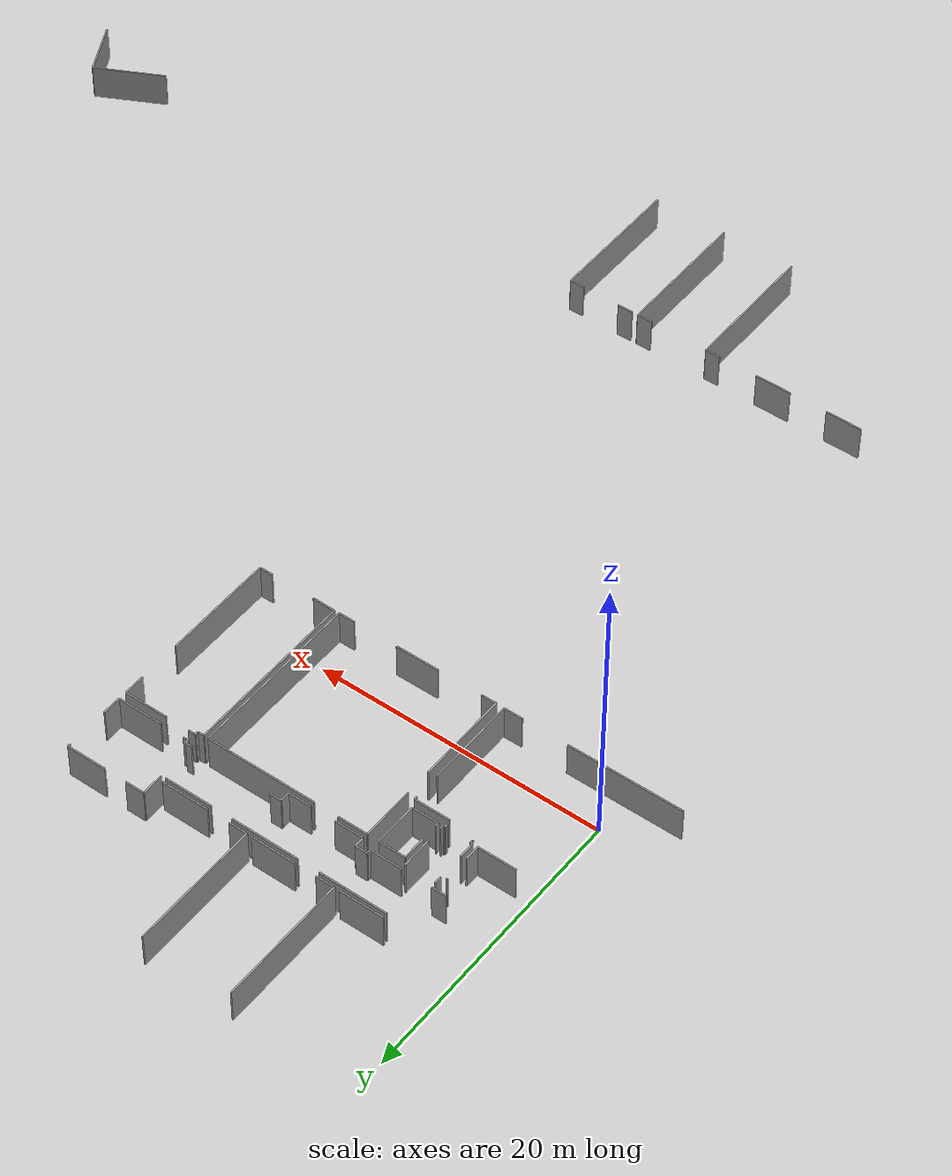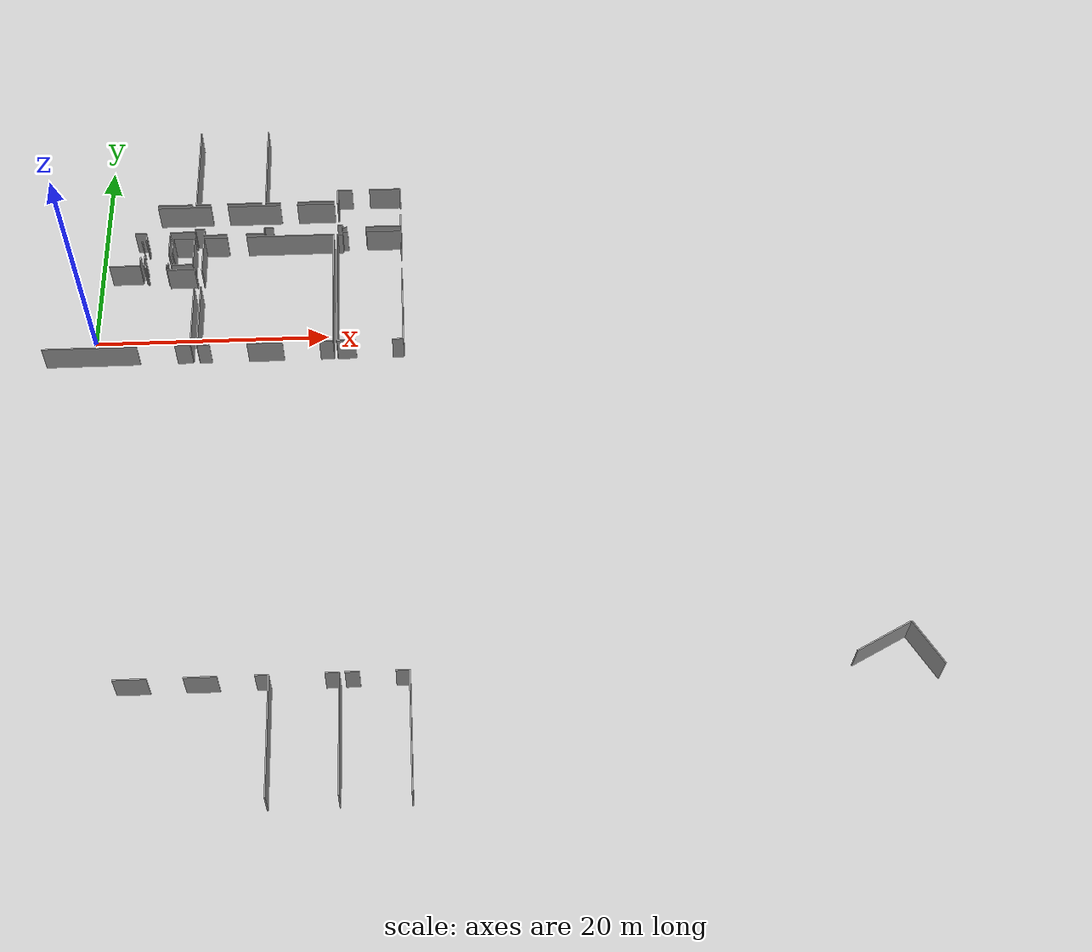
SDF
<sdf version="1.6">
 <world name="default">
  <model name="ground_plane">
   <static>1</static>
   <link name="link">
    <collision name="collision">
     <geometry><plane><normal>0 0 1</normal><size>100 100</size></plane></geometry>
     <surface><friction><ode><mu>100</mu><mu2>50</mu2></ode></friction></surface>
    </collision>
    <visual name="visual">
     <cast_shadows>0</cast_shadows>
     <geometry><plane><normal>0 0 1</normal><size>100 100</size></plane></geometry>
     <material>
      <script><uri>file://media/materials/scripts/gazebo.material</uri><name>Gazebo/Grey</name></script>
     </material>
    </visual>
   </link>
  </model>
  <model name="0510045925_40">
   <static>1</static>
   <link name="Wall_900">
    <collision name="Wall_900_Collision">
     <geometry><box><size>0.0784244054719 0.1 2.5</size></box></geometry>
     <pose>0.039212202736 0 1.25 0 0 0</pose>
    </collision>
    <visual name="Wall_900_Visual">
     <pose>0.039212202736 0 1.25 0 0 0</pose>
     <geometry><box><size>0.0784244054719 0.1 2.5</size></box></geometry>
     <material>
      <script><uri>file://media/materials/scripts/gazebo.material</uri><name>Gazebo/Grey</name></script>
      <ambient>1 1 1 1</ambient>
     </material>
    </visual>
    <pose>137.552397147 -91.5793253978 0 0 0 -1.57079632679</pose>
   </link>
   <link name="Wall_901">
    <collision name="Wall_901_Collision">
     <geometry><box><size>1.0342377097 0.1 2.5</size></box></geometry>
     <pose>0.517118854851 0 1.25 0 0 0</pose>
    </collision>
    <visual name="Wall_901_Visual">
     <pose>0.517118854851 0 1.25 0 0 0</pose>
     <geometry><box><size>1.0342377097 0.1 2.5</size></box></geometry>
     <material>
      <script><uri>file://media/materials/scripts/gazebo.material</uri><name>Gazebo/Grey</name></script>
      <ambient>1 1 1 1</ambient>
     </material>
    </visual>
    <pose>137.552397147 -93.388924139 0 0 0 -1.57079632679</pose>
   </link>
   <link name="Wall_902">
    <collision name="Wall_902_Collision">
     <geometry><box><size>2.66237101984 0.1 2.5</size></box></geometry>
     <pose>1.33118550992 0 1.25 0 0 0</pose>
    </collision>
    <visual name="Wall_902_Visual">
     <pose>1.33118550992 0 1.25 0 0 0</pose>
     <geometry><box><size>2.66237101984 0.1 2.5</size></box></geometry>
     <material>
      <script><uri>file://media/materials/scripts/gazebo.material</uri><name>Gazebo/Grey</name></script>
      <ambient>1 1 1 1</ambient>
     </material>
    </visual>
    <pose>137.552397147 -94.4231618487 0 0 0 -3.14035337872</pose>
   </link>
   <link name="Wall_903">
    <collision name="Wall_903_Collision">
     <geometry><box><size>1.089312454 0.1 2.5</size></box></geometry>
     <pose>0.544656226999 0 1.25 0 0 0</pose>
    </collision>
    <visual name="Wall_903_Visual">
     <pose>0.544656226999 0 1.25 0 0 0</pose>
     <geometry><box><size>1.089312454 0.1 2.5</size></box></geometry>
     <material>
      <script><uri>file://media/materials/scripts/gazebo.material</uri><name>Gazebo/Grey</name></script>
      <ambient>1 1 1 1</ambient>
     </material>
    </visual>
    <pose>137.906449075 -94.4361056826 0 0 0 1.57079632679</pose>
   </link>
   <link name="Wall_904">
    <collision name="Wall_904_Collision">
     <geometry><box><size>0.526382579122 0.1 2.5</size></box></geometry>
     <pose>0.263191289561 0 1.25 0 0 0</pose>
    </collision>
    <visual name="Wall_904_Visual">
     <pose>0.263191289561 0 1.25 0 0 0</pose>
     <geometry><box><size>0.526382579122 0.1 2.5</size></box></geometry>
     <material>
      <script><uri>file://media/materials/scripts/gazebo.material</uri><name>Gazebo/Grey</name></script>
      <ambient>1 1 1 1</ambient>
     </material>
    </visual>
    <pose>137.906449075 -91.5067384077 0 0 0 1.57079632679</pose>
   </link>
   <link name="Wall_905">
    <collision name="Wall_905_Collision">
     <geometry><box><size>2.09487068856 0.1 2.5</size></box></geometry>
     <pose>1.04743534428 0 1.25 0 0 0</pose>
    </collision>
    <visual name="Wall_905_Visual">
     <pose>1.04743534428 0 1.25 0 0 0</pose>
     <geometry><box><size>2.09487068856 0.1 2.5</size></box></geometry>
     <material>
      <script><uri>file://media/materials/scripts/gazebo.material</uri><name>Gazebo/Grey</name></script>
      <ambient>1 1 1 1</ambient>
     </material>
    </visual>
    <pose>139.988883531 -90.9803558285 0 0 0 -1.57079632679</pose>
   </link>
   <link name="Wall_906">
    <collision name="Wall_906_Collision">
     <geometry><box><size>0.260907083577 0.1 2.5</size></box></geometry>
     <pose>0.130453541788 0 1.25 0 0 0</pose>
    </collision>
    <visual name="Wall_906_Visual">
     <pose>0.130453541788 0 1.25 0 0 0</pose>
     <geometry><box><size>0.260907083577 0.1 2.5</size></box></geometry>
     <material>
      <script><uri>file://media/materials/scripts/gazebo.material</uri><name>Gazebo/Grey</name></script>
      <ambient>1 1 1 1</ambient>
     </material>
    </visual>
    <pose>139.988883531 -94.184335423 0 0 0 -1.57079632679</pose>
   </link>
   <link name="Wall_907">
    <collision name="Wall_907_Collision">
     <geometry><box><size>0.126646531814 0.1 2.5</size></box></geometry>
     <pose>0.063323265907 0 1.25 0 0 0</pose>
    </collision>
    <visual name="Wall_907_Visual">
     <pose>0.063323265907 0 1.25 0 0 0</pose>
     <geometry><box><size>0.126646531814 0.1 2.5</size></box></geometry>
     <material>
      <script><uri>file://media/materials/scripts/gazebo.material</uri><name>Gazebo/Grey</name></script>
      <ambient>1 1 1 1</ambient>
     </material>
    </visual>
    <pose>139.988883531 -94.4452425065 0 0 0 3.14159265359</pose>
   </link>
   <link name="Wall_908">
    <collision name="Wall_908_Collision">
     <geometry><box><size>0.206086139946 0.1 2.5</size></box></geometry>
     <pose>0.103043069973 0 1.25 0 0 0</pose>
    </collision>
    <visual name="Wall_908_Visual">
     <pose>0.103043069973 0 1.25 0 0 0</pose>
     <geometry><box><size>0.206086139946 0.1 2.5</size></box></geometry>
     <material>
      <script><uri>file://media/materials/scripts/gazebo.material</uri><name>Gazebo/Grey</name></script>
      <ambient>1 1 1 1</ambient>
     </material>
    </visual>
    <pose>139.862236999 -94.4452425065 0 0 0 -1.57079632679</pose>
   </link>
   <link name="Wall_909">
    <collision name="Wall_909_Collision">
     <geometry><box><size>0.206086139946 0.1 2.5</size></box></geometry>
     <pose>0.103043069973 0 1.25 0 0 0</pose>
    </collision>
    <visual name="Wall_909_Visual">
     <pose>0.103043069973 0 1.25 0 0 0</pose>
     <geometry><box><size>0.206086139946 0.1 2.5</size></box></geometry>
     <material>
      <script><uri>file://media/materials/scripts/gazebo.material</uri><name>Gazebo/Grey</name></script>
      <ambient>1 1 1 1</ambient>
     </material>
    </visual>
    <pose>138.059744677 -94.6513286465 0 0 0 1.57079632679</pose>
   </link>
   <link name="Wall_910">
    <collision name="Wall_910_Collision">
     <geometry><box><size>0.153567649693 0.1 2.5</size></box></geometry>
     <pose>0.0767838248464 0 1.25 0 0 0</pose>
    </collision>
    <visual name="Wall_910_Visual">
     <pose>0.0767838248464 0 1.25 0 0 0</pose>
     <geometry><box><size>0.153567649693 0.1 2.5</size></box></geometry>
     <material>
      <script><uri>file://media/materials/scripts/gazebo.material</uri><name>Gazebo/Grey</name></script>
      <ambient>1 1 1 1</ambient>
     </material>
    </visual>
    <pose>138.059744677 -94.4452425065 0 0 0 3.08206043351</pose>
   </link>
   <link name="Wall_911">
    <collision name="Wall_911_Collision">
     <geometry><box><size>1.84360803025 0.1 2.5</size></box></geometry>
     <pose>0.921804015127 0 1.25 0 0 0</pose>
    </collision>
    <visual name="Wall_911_Visual">
     <pose>0.921804015127 0 1.25 0 0 0</pose>
     <geometry><box><size>1.84360803025 0.1 2.5</size></box></geometry>
     <material>
      <script><uri>file://media/materials/scripts/gazebo.material</uri><name>Gazebo/Grey</name></script>
      <ambient>1 1 1 1</ambient>
     </material>
    </visual>
    <pose>140.307403365 -91.4092789523 0 0 0 0.0</pose>
   </link>
   <link name="Wall_912">
    <collision name="Wall_912_Collision">
     <geometry><box><size>3.03088754093 0.1 2.5</size></box></geometry>
     <pose>1.51544377046 0 1.25 0 0 0</pose>
    </collision>
    <visual name="Wall_912_Visual">
     <pose>1.51544377046 0 1.25 0 0 0</pose>
     <geometry><box><size>3.03088754093 0.1 2.5</size></box></geometry>
     <material>
      <script><uri>file://media/materials/scripts/gazebo.material</uri><name>Gazebo/Grey</name></script>
      <ambient>1 1 1 1</ambient>
     </material>
    </visual>
    <pose>142.151011396 -91.4092789523 0 0 0 -1.57079632679</pose>
   </link>
   <link name="Wall_913">
    <collision name="Wall_913_Collision">
     <geometry><box><size>1.8512220502 0.1 2.5</size></box></geometry>
     <pose>0.925611025101 0 1.25 0 0 0</pose>
    </collision>
    <visual name="Wall_913_Visual">
     <pose>0.925611025101 0 1.25 0 0 0</pose>
     <geometry><box><size>1.8512220502 0.1 2.5</size></box></geometry>
     <material>
      <script><uri>file://media/materials/scripts/gazebo.material</uri><name>Gazebo/Grey</name></script>
      <ambient>1 1 1 1</ambient>
     </material>
    </visual>
    <pose>142.151011396 -94.4401664932 0 0 0 3.14159265359</pose>
   </link>
   <link name="Wall_914">
    <collision name="Wall_914_Collision">
     <geometry><box><size>0.273089515495 0.1 2.5</size></box></geometry>
     <pose>0.136544757747 0 1.25 0 0 0</pose>
    </collision>
    <visual name="Wall_914_Visual">
     <pose>0.136544757747 0 1.25 0 0 0</pose>
     <geometry><box><size>0.273089515495 0.1 2.5</size></box></geometry>
     <material>
      <script><uri>file://media/materials/scripts/gazebo.material</uri><name>Gazebo/Grey</name></script>
      <ambient>1 1 1 1</ambient>
     </material>
    </visual>
    <pose>140.299789345 -94.4401664932 0 0 0 1.57079632679</pose>
   </link>
   <link name="Wall_915">
    <collision name="Wall_915_Collision">
     <geometry><box><size>1.63271743139 0.1 2.5</size></box></geometry>
     <pose>0.816358715696 0 1.25 0 0 0</pose>
    </collision>
    <visual name="Wall_915_Visual">
     <pose>0.816358715696 0 1.25 0 0 0</pose>
     <geometry><box><size>1.63271743139 0.1 2.5</size></box></geometry>
     <material>
      <script><uri>file://media/materials/scripts/gazebo.material</uri><name>Gazebo/Grey</name></script>
      <ambient>1 1 1 1</ambient>
     </material>
    </visual>
    <pose>140.299789345 -93.04197863 0 0 0 1.56613290654</pose>
   </link>
   <link name="Wall_919">
    <collision name="Wall_919_Collision">
     <geometry><box><size>2.4552676328 0.1 2.5</size></box></geometry>
     <pose>1.2276338164 0 1.25 0 0 0</pose>
    </collision>
    <visual name="Wall_919_Visual">
     <pose>1.2276338164 0 1.25 0 0 0</pose>
     <geometry><box><size>2.4552676328 0.1 2.5</size></box></geometry>
     <material>
      <script><uri>file://media/materials/scripts/gazebo.material</uri><name>Gazebo/Grey</name></script>
      <ambient>1 1 1 1</ambient>
     </material>
    </visual>
    <pose>139.961219258 -94.9980203548 0 0 0 0.0</pose>
   </link>
   <link name="Wall_920">
    <collision name="Wall_920_Collision">
     <geometry><box><size>0.222583183168 0.1 2.5</size></box></geometry>
     <pose>0.111291591584 0 1.25 0 0 0</pose>
    </collision>
    <visual name="Wall_920_Visual">
     <pose>0.111291591584 0 1.25 0 0 0</pose>
     <geometry><box><size>0.222583183168 0.1 2.5</size></box></geometry>
     <material>
      <script><uri>file://media/materials/scripts/gazebo.material</uri><name>Gazebo/Grey</name></script>
      <ambient>1 1 1 1</ambient>
     </material>
    </visual>
    <pose>142.416486891 -94.9980203548 0 0 0 -1.57079632679</pose>
   </link>
   <link name="Wall_921">
    <collision name="Wall_921_Collision">
     <geometry><box><size>6.31836755412 0.1 2.5</size></box></geometry>
     <pose>3.15918377706 0 1.25 0 0 0</pose>
    </collision>
    <visual name="Wall_921_Visual">
     <pose>3.15918377706 0 1.25 0 0 0</pose>
     <geometry><box><size>6.31836755412 0.1 2.5</size></box></geometry>
     <material>
      <script><uri>file://media/materials/scripts/gazebo.material</uri><name>Gazebo/Grey</name></script>
      <ambient>1 1 1 1</ambient>
     </material>
    </visual>
    <pose>142.416486891 -97.0903530367 0 0 0 -1.57079632679</pose>
   </link>
   <link name="Wall_922">
    <collision name="Wall_922_Collision">
     <geometry><box><size>1.32077866044 0.1 2.5</size></box></geometry>
     <pose>0.66038933022 0 1.25 0 0 0</pose>
    </collision>
    <visual name="Wall_922_Visual">
     <pose>0.66038933022 0 1.25 0 0 0</pose>
     <geometry><box><size>1.32077866044 0.1 2.5</size></box></geometry>
     <material>
      <script><uri>file://media/materials/scripts/gazebo.material</uri><name>Gazebo/Grey</name></script>
      <ambient>1 1 1 1</ambient>
     </material>
    </visual>
    <pose>142.416486891 -103.408720591 0 0 0 3.14159265359</pose>
   </link>
   <link name="Wall_923">
    <collision name="Wall_923_Collision">
     <geometry><box><size>8.01377350284 0.1 2.5</size></box></geometry>
     <pose>4.00688675142 0 1.25 0 0 0</pose>
    </collision>
    <visual name="Wall_923_Visual">
     <pose>4.00688675142 0 1.25 0 0 0</pose>
     <geometry><box><size>8.01377350284 0.1 2.5</size></box></geometry>
     <material>
      <script><uri>file://media/materials/scripts/gazebo.material</uri><name>Gazebo/Grey</name></script>
      <ambient>1 1 1 1</ambient>
     </material>
    </visual>
    <pose>137.910509886 -103.408720591 0 0 0 -3.13950239535</pose>
   </link>
   <link name="Wall_924">
    <collision name="Wall_924_Collision">
     <geometry><box><size>6.42496383341 0.1 2.5</size></box></geometry>
     <pose>3.2124819167 0 1.25 0 0 0</pose>
    </collision>
    <visual name="Wall_924_Visual">
     <pose>3.2124819167 0 1.25 0 0 0</pose>
     <geometry><box><size>6.42496383341 0.1 2.5</size></box></geometry>
     <material>
      <script><uri>file://media/materials/scripts/gazebo.material</uri><name>Gazebo/Grey</name></script>
      <ambient>1 1 1 1</ambient>
     </material>
    </visual>
    <pose>142.994644806 -103.430801249 0 0 0 1.57079632679</pose>
   </link>
   <link name="Wall_925">
    <collision name="Wall_925_Collision">
     <geometry><box><size>3.72604756224 0.1 2.5</size></box></geometry>
     <pose>1.86302378112 0 1.25 0 0 0</pose>
    </collision>
    <visual name="Wall_925_Visual">
     <pose>1.86302378112 0 1.25 0 0 0</pose>
     <geometry><box><size>3.72604756224 0.1 2.5</size></box></geometry>
     <material>
      <script><uri>file://media/materials/scripts/gazebo.material</uri><name>Gazebo/Grey</name></script>
      <ambient>1 1 1 1</ambient>
     </material>
    </visual>
    <pose>142.994644806 -95.1388797239 0 0 0 1.57079632679</pose>
   </link>
   <link name="Wall_926">
    <collision name="Wall_926_Collision">
     <geometry><box><size>2.06771401741 0.1 2.5</size></box></geometry>
     <pose>1.03385700871 0 1.25 0 0 0</pose>
    </collision>
    <visual name="Wall_926_Visual">
     <pose>1.03385700871 0 1.25 0 0 0</pose>
     <geometry><box><size>2.06771401741 0.1 2.5</size></box></geometry>
     <material>
      <script><uri>file://media/materials/scripts/gazebo.material</uri><name>Gazebo/Grey</name></script>
      <ambient>1 1 1 1</ambient>
     </material>
    </visual>
    <pose>142.994644806 -91.4128321616 0 0 0 0.0</pose>
   </link>
   <link name="Wall_927">
    <collision name="Wall_927_Collision">
     <geometry><box><size>7.71579401538 0.1 2.5</size></box></geometry>
     <pose>3.85789700769 0 1.25 0 0 0</pose>
    </collision>
    <visual name="Wall_927_Visual">
     <pose>3.85789700769 0 1.25 0 0 0</pose>
     <geometry><box><size>7.71579401538 0.1 2.5</size></box></geometry>
     <material>
      <script><uri>file://media/materials/scripts/gazebo.material</uri><name>Gazebo/Grey</name></script>
      <ambient>1 1 1 1</ambient>
     </material>
    </visual>
    <pose>146.764346083 -91.4128321616 0 0 0 0.0</pose>
   </link>
   <link name="Wall_928">
    <collision name="Wall_928_Collision">
     <geometry><box><size>12.0055328545 0.1 2.5</size></box></geometry>
     <pose>6.00276642725 0 1.25 0 0 0</pose>
    </collision>
    <visual name="Wall_928_Visual">
     <pose>6.00276642725 0 1.25 0 0 0</pose>
     <geometry><box><size>12.0055328545 0.1 2.5</size></box></geometry>
     <material>
      <script><uri>file://media/materials/scripts/gazebo.material</uri><name>Gazebo/Grey</name></script>
      <ambient>1 1 1 1</ambient>
     </material>
    </visual>
    <pose>154.480140098 -91.4128321616 0 0 0 -1.57079632679</pose>
   </link>
   <link name="Wall_929">
    <collision name="Wall_929_Collision">
     <geometry><box><size>1.1487018096 0.1 2.5</size></box></geometry>
     <pose>0.574350904799 0 1.25 0 0 0</pose>
    </collision>
    <visual name="Wall_929_Visual">
     <pose>0.574350904799 0 1.25 0 0 0</pose>
     <geometry><box><size>1.1487018096 0.1 2.5</size></box></geometry>
     <material>
      <script><uri>file://media/materials/scripts/gazebo.material</uri><name>Gazebo/Grey</name></script>
      <ambient>1 1 1 1</ambient>
     </material>
    </visual>
    <pose>154.480140098 -103.418365016 0 0 0 3.14159265359</pose>
   </link>
   <link name="Wall_930">
    <collision name="Wall_930_Collision">
     <geometry><box><size>3.03545595289 0.1 2.5</size></box></geometry>
     <pose>1.51772797645 0 1.25 0 0 0</pose>
    </collision>
    <visual name="Wall_930_Visual">
     <pose>1.51772797645 0 1.25 0 0 0</pose>
     <geometry><box><size>3.03545595289 0.1 2.5</size></box></geometry>
     <material>
      <script><uri>file://media/materials/scripts/gazebo.material</uri><name>Gazebo/Grey</name></script>
      <ambient>1 1 1 1</ambient>
     </material>
    </visual>
    <pose>150.224410548 -103.418365016 0 0 0 3.14159265359</pose>
   </link>
   <link name="Wall_931">
    <collision name="Wall_931_Collision">
     <geometry><box><size>1.05309239277 0.1 2.5</size></box></geometry>
     <pose>0.526546196384 0 1.25 0 0 0</pose>
    </collision>
    <visual name="Wall_931_Visual">
     <pose>0.526546196384 0 1.25 0 0 0</pose>
     <geometry><box><size>1.05309239277 0.1 2.5</size></box></geometry>
     <material>
      <script><uri>file://media/materials/scripts/gazebo.material</uri><name>Gazebo/Grey</name></script>
      <ambient>1 1 1 1</ambient>
     </material>
    </visual>
    <pose>144.047663765 -103.418365016 0 0 0 -3.12978312791</pose>
   </link>
   <link name="Wall_932">
    <collision name="Wall_932_Collision">
     <geometry><box><size>11.9702545621 0.1 2.5</size></box></geometry>
     <pose>5.98512728103 0 1.25 0 0 0</pose>
    </collision>
    <visual name="Wall_932_Visual">
     <pose>5.98512728103 0 1.25 0 0 0</pose>
     <geometry><box><size>11.9702545621 0.1 2.5</size></box></geometry>
     <material>
      <script><uri>file://media/materials/scripts/gazebo.material</uri><name>Gazebo/Grey</name></script>
      <ambient>1 1 1 1</ambient>
     </material>
    </visual>
    <pose>154.815410776 -103.40465978 0 0 0 1.57079632679</pose>
   </link>
   <link name="Wall_933">
    <collision name="Wall_933_Collision">
     <geometry><box><size>0.445927768331 0.1 2.5</size></box></geometry>
     <pose>0.222963884165 0 1.25 0 0 0</pose>
    </collision>
    <visual name="Wall_933_Visual">
     <pose>0.222963884165 0 1.25 0 0 0</pose>
     <geometry><box><size>0.445927768331 0.1 2.5</size></box></geometry>
     <material>
      <script><uri>file://media/materials/scripts/gazebo.material</uri><name>Gazebo/Grey</name></script>
      <ambient>1 1 1 1</ambient>
     </material>
    </visual>
    <pose>154.815410776 -91.4344052181 0 0 0 0.0</pose>
   </link>
   <link name="Wall_934">
    <collision name="Wall_934_Collision">
     <geometry><box><size>0.240349229715 0.1 2.5</size></box></geometry>
     <pose>0.120174614857 0 1.25 0 0 0</pose>
    </collision>
    <visual name="Wall_934_Visual">
     <pose>0.120174614857 0 1.25 0 0 0</pose>
     <geometry><box><size>0.240349229715 0.1 2.5</size></box></geometry>
     <material>
      <script><uri>file://media/materials/scripts/gazebo.material</uri><name>Gazebo/Grey</name></script>
      <ambient>1 1 1 1</ambient>
     </material>
    </visual>
    <pose>155.261338545 -91.4344052181 0 0 0 1.57079632679</pose>
   </link>
   <link name="Wall_935">
    <collision name="Wall_935_Collision">
     <geometry><box><size>0.487804878049 0.1 2.5</size></box></geometry>
     <pose>0.243902439024 0 1.25 0 0 0</pose>
    </collision>
    <visual name="Wall_935_Visual">
     <pose>0.243902439024 0 1.25 0 0 0</pose>
     <geometry><box><size>0.487804878049 0.1 2.5</size></box></geometry>
     <material>
      <script><uri>file://media/materials/scripts/gazebo.material</uri><name>Gazebo/Grey</name></script>
      <ambient>1 1 1 1</ambient>
     </material>
    </visual>
    <pose>155.261338545 -91.1940559884 0 0 0 0.0</pose>
   </link>
   <link name="Wall_936">
    <collision name="Wall_936_Collision">
     <geometry><box><size>3.03317174691 0.1 2.5</size></box></geometry>
     <pose>1.51658587345 0 1.25 0 0 0</pose>
    </collision>
    <visual name="Wall_936_Visual">
     <pose>1.51658587345 0 1.25 0 0 0</pose>
     <geometry><box><size>3.03317174691 0.1 2.5</size></box></geometry>
     <material>
      <script><uri>file://media/materials/scripts/gazebo.material</uri><name>Gazebo/Grey</name></script>
      <ambient>1 1 1 1</ambient>
     </material>
    </visual>
    <pose>157.413060582 -91.1940559884 0 0 0 0.0</pose>
   </link>
   <link name="Wall_937">
    <collision name="Wall_937_Collision">
     <geometry><box><size>1.46366843481 0.1 2.5</size></box></geometry>
     <pose>0.731834217406 0 1.25 0 0 0</pose>
    </collision>
    <visual name="Wall_937_Visual">
     <pose>0.731834217406 0 1.25 0 0 0</pose>
     <geometry><box><size>1.46366843481 0.1 2.5</size></box></geometry>
     <material>
      <script><uri>file://media/materials/scripts/gazebo.material</uri><name>Gazebo/Grey</name></script>
      <ambient>1 1 1 1</ambient>
     </material>
    </visual>
    <pose>160.446232329 -91.1940559884 0 0 0 -1.57079632679</pose>
   </link>
   <link name="Wall_938">
    <collision name="Wall_938_Collision">
     <geometry><box><size>7.80310144413 0.1 2.5</size></box></geometry>
     <pose>3.90155072206 0 1.25 0 0 0</pose>
    </collision>
    <visual name="Wall_938_Visual">
     <pose>3.90155072206 0 1.25 0 0 0</pose>
     <geometry><box><size>7.80310144413 0.1 2.5</size></box></geometry>
     <material>
      <script><uri>file://media/materials/scripts/gazebo.material</uri><name>Gazebo/Grey</name></script>
      <ambient>1 1 1 1</ambient>
     </material>
    </visual>
    <pose>160.446232329 -95.6233851933 0 0 0 -1.57079632679</pose>
   </link>
   <link name="Wall_939">
    <collision name="Wall_939_Collision">
     <geometry><box><size>0.936016852364 0.1 2.5</size></box></geometry>
     <pose>0.468008426182 0 1.25 0 0 0</pose>
    </collision>
    <visual name="Wall_939_Visual">
     <pose>0.468008426182 0 1.25 0 0 0</pose>
     <geometry><box><size>0.936016852364 0.1 2.5</size></box></geometry>
     <material>
      <script><uri>file://media/materials/scripts/gazebo.material</uri><name>Gazebo/Grey</name></script>
      <ambient>1 1 1 1</ambient>
     </material>
    </visual>
    <pose>160.446232329 -103.426486637 0 0 0 3.14159265359</pose>
   </link>
   <link name="Wall_940">
    <collision name="Wall_940_Collision">
     <geometry><box><size>1.58868830774 0.1 2.5</size></box></geometry>
     <pose>0.794344153869 0 1.25 0 0 0</pose>
    </collision>
    <visual name="Wall_940_Visual">
     <pose>0.794344153869 0 1.25 0 0 0</pose>
     <geometry><box><size>1.58868830774 0.1 2.5</size></box></geometry>
     <material>
      <script><uri>file://media/materials/scripts/gazebo.material</uri><name>Gazebo/Grey</name></script>
      <ambient>1 1 1 1</ambient>
     </material>
    </visual>
    <pose>156.403949138 -103.426486637 0 0 0 3.12785330409</pose>
   </link>
   <link name="Wall_941">
    <collision name="Wall_941_Collision">
     <geometry><box><size>1.33067688637 0.1 2.5</size></box></geometry>
     <pose>0.665338443187 0 1.25 0 0 0</pose>
    </collision>
    <visual name="Wall_941_Visual">
     <pose>0.665338443187 0 1.25 0 0 0</pose>
     <geometry><box><size>1.33067688637 0.1 2.5</size></box></geometry>
     <material>
      <script><uri>file://media/materials/scripts/gazebo.material</uri><name>Gazebo/Grey</name></script>
      <ambient>1 1 1 1</ambient>
     </material>
    </visual>
    <pose>154.816425979 -86.1472297657 0 0 0 0.0</pose>
   </link>
   <link name="Wall_942">
    <collision name="Wall_942_Collision">
     <geometry><box><size>2.77048805868 0.1 2.5</size></box></geometry>
     <pose>1.38524402934 0 1.25 0 0 0</pose>
    </collision>
    <visual name="Wall_942_Visual">
     <pose>1.38524402934 0 1.25 0 0 0</pose>
     <geometry><box><size>2.77048805868 0.1 2.5</size></box></geometry>
     <material>
      <script><uri>file://media/materials/scripts/gazebo.material</uri><name>Gazebo/Grey</name></script>
      <ambient>1 1 1 1</ambient>
     </material>
    </visual>
    <pose>157.686657699 -86.1472297657 0 0 0 0.0</pose>
   </link>
   <link name="Wall_943">
    <collision name="Wall_943_Collision">
     <geometry><box><size>0.187812492069 0.1 2.5</size></box></geometry>
     <pose>0.0939062460344 0 1.25 0 0 0</pose>
    </collision>
    <visual name="Wall_943_Visual">
     <pose>0.0939062460344 0 1.25 0 0 0</pose>
     <geometry><box><size>0.187812492069 0.1 2.5</size></box></geometry>
     <material>
      <script><uri>file://media/materials/scripts/gazebo.material</uri><name>Gazebo/Grey</name></script>
      <ambient>1 1 1 1</ambient>
     </material>
    </visual>
    <pose>160.457145758 -86.1472297657 0 0 0 -1.57079632679</pose>
   </link>
   <link name="Wall_944">
    <collision name="Wall_944_Collision">
     <geometry><box><size>1.31544884648 0.1 2.5</size></box></geometry>
     <pose>0.657724423238 0 1.25 0 0 0</pose>
    </collision>
    <visual name="Wall_944_Visual">
     <pose>0.657724423238 0 1.25 0 0 0</pose>
     <geometry><box><size>1.31544884648 0.1 2.5</size></box></geometry>
     <material>
      <script><uri>file://media/materials/scripts/gazebo.material</uri><name>Gazebo/Grey</name></script>
      <ambient>1 1 1 1</ambient>
     </material>
    </visual>
    <pose>160.457145758 -89.3032410345 0 0 0 -1.57079632679</pose>
   </link>
   <link name="Wall_945">
    <collision name="Wall_945_Collision">
     <geometry><box><size>3.13621481688 0.1 2.5</size></box></geometry>
     <pose>1.56810740844 0 1.25 0 0 0</pose>
    </collision>
    <visual name="Wall_945_Visual">
     <pose>1.56810740844 0 1.25 0 0 0</pose>
     <geometry><box><size>3.13621481688 0.1 2.5</size></box></geometry>
     <material>
      <script><uri>file://media/materials/scripts/gazebo.material</uri><name>Gazebo/Grey</name></script>
      <ambient>1 1 1 1</ambient>
     </material>
    </visual>
    <pose>160.457145758 -90.618689881 0 0 0 3.14159265359</pose>
   </link>
   <link name="Wall_946">
    <collision name="Wall_946_Collision">
     <geometry><box><size>0.378162990787 0.1 2.5</size></box></geometry>
     <pose>0.189081495394 0 1.25 0 0 0</pose>
    </collision>
    <visual name="Wall_946_Visual">
     <pose>0.189081495394 0 1.25 0 0 0</pose>
     <geometry><box><size>0.378162990787 0.1 2.5</size></box></geometry>
     <material>
      <script><uri>file://media/materials/scripts/gazebo.material</uri><name>Gazebo/Grey</name></script>
      <ambient>1 1 1 1</ambient>
     </material>
    </visual>
    <pose>155.650922565 -90.618689881 0 0 0 3.14159265359</pose>
   </link>
   <link name="Wall_947">
    <collision name="Wall_947_Collision">
     <geometry><box><size>0.24212583437 0.1 2.5</size></box></geometry>
     <pose>0.121062917185 0 1.25 0 0 0</pose>
    </collision>
    <visual name="Wall_947_Visual">
     <pose>0.121062917185 0 1.25 0 0 0</pose>
     <geometry><box><size>0.24212583437 0.1 2.5</size></box></geometry>
     <material>
      <script><uri>file://media/materials/scripts/gazebo.material</uri><name>Gazebo/Grey</name></script>
      <ambient>1 1 1 1</ambient>
     </material>
    </visual>
    <pose>155.272759575 -90.618689881 0 0 0 1.57079632679</pose>
   </link>
   <link name="Wall_948">
    <collision name="Wall_948_Collision">
     <geometry><box><size>0.441613157026 0.1 2.5</size></box></geometry>
     <pose>0.220806578513 0 1.25 0 0 0</pose>
    </collision>
    <visual name="Wall_948_Visual">
     <pose>0.220806578513 0 1.25 0 0 0</pose>
     <geometry><box><size>0.441613157026 0.1 2.5</size></box></geometry>
     <material>
      <script><uri>file://media/materials/scripts/gazebo.material</uri><name>Gazebo/Grey</name></script>
      <ambient>1 1 1 1</ambient>
     </material>
    </visual>
    <pose>155.272759575 -90.3765640466 0 0 0 3.14159265359</pose>
   </link>
   <link name="Wall_949">
    <collision name="Wall_949_Collision">
     <geometry><box><size>1.52566681399 0.1 2.5</size></box></geometry>
     <pose>0.762833406997 0 1.25 0 0 0</pose>
    </collision>
    <visual name="Wall_949_Visual">
     <pose>0.762833406997 0 1.25 0 0 0</pose>
     <geometry><box><size>1.52566681399 0.1 2.5</size></box></geometry>
     <material>
      <script><uri>file://media/materials/scripts/gazebo.material</uri><name>Gazebo/Grey</name></script>
      <ambient>1 1 1 1</ambient>
     </material>
    </visual>
    <pose>154.831146418 -87.6728255628 0 0 0 1.58044500424</pose>
   </link>
   <link name="Wall_956">
    <collision name="Wall_956_Collision">
     <geometry><box><size>8.99926397807 0.1 2.5</size></box></geometry>
     <pose>4.49963198904 0 1.25 0 0 0</pose>
    </collision>
    <visual name="Wall_956_Visual">
     <pose>4.49963198904 0 1.25 0 0 0</pose>
     <geometry><box><size>8.99926397807 0.1 2.5</size></box></geometry>
     <material>
      <script><uri>file://media/materials/scripts/gazebo.material</uri><name>Gazebo/Grey</name></script>
      <ambient>1 1 1 1</ambient>
     </material>
    </visual>
    <pose>148.349331235 -87.4027816553 0 0 0 1.57079632679</pose>
   </link>
   <link name="Wall_960">
    <collision name="Wall_960_Collision">
     <geometry><box><size>3.30600746174 0.1 2.5</size></box></geometry>
     <pose>1.65300373087 0 1.25 0 0 0</pose>
    </collision>
    <visual name="Wall_960_Visual">
     <pose>1.65300373087 0 1.25 0 0 0</pose>
     <geometry><box><size>3.30600746174 0.1 2.5</size></box></geometry>
     <material>
      <script><uri>file://media/materials/scripts/gazebo.material</uri><name>Gazebo/Grey</name></script>
      <ambient>1 1 1 1</ambient>
     </material>
    </visual>
    <pose>154.49993655 -87.4088728712 0 0 0 3.14159265359</pose>
   </link>
   <link name="Wall_961">
    <collision name="Wall_961_Collision">
     <geometry><box><size>1.30201165961 0.1 2.5</size></box></geometry>
     <pose>0.651005829807 0 1.25 0 0 0</pose>
    </collision>
    <visual name="Wall_961_Visual">
     <pose>0.651005829807 0 1.25 0 0 0</pose>
     <geometry><box><size>1.30201165961 0.1 2.5</size></box></geometry>
     <material>
      <script><uri>file://media/materials/scripts/gazebo.material</uri><name>Gazebo/Grey</name></script>
      <ambient>1 1 1 1</ambient>
     </material>
    </visual>
    <pose>149.651328646 -87.4088728712 0 0 0 3.13691432515</pose>
   </link>
   <link name="Wall_974">
    <collision name="Wall_974_Collision">
     <geometry><box><size>3.07733306261 0.1 2.5</size></box></geometry>
     <pose>1.53866653131 0 1.25 0 0 0</pose>
    </collision>
    <visual name="Wall_974_Visual">
     <pose>1.53866653131 0 1.25 0 0 0</pose>
     <geometry><box><size>3.07733306261 0.1 2.5</size></box></geometry>
     <material>
      <script><uri>file://media/materials/scripts/gazebo.material</uri><name>Gazebo/Grey</name></script>
      <ambient>1 1 1 1</ambient>
     </material>
    </visual>
    <pose>141.773356006 -87.3872998147 0 0 0 3.14159265359</pose>
   </link>
   <link name="Wall_976">
    <collision name="Wall_976_Collision">
     <geometry><box><size>8.9700769016 0.1 2.5</size></box></geometry>
     <pose>4.4850384508 0 1.25 0 0 0</pose>
    </collision>
    <visual name="Wall_976_Visual">
     <pose>4.4850384508 0 1.25 0 0 0</pose>
     <geometry><box><size>8.9700769016 0.1 2.5</size></box></geometry>
     <material>
      <script><uri>file://media/materials/scripts/gazebo.material</uri><name>Gazebo/Grey</name></script>
      <ambient>1 1 1 1</ambient>
     </material>
    </visual>
    <pose>142.13375295 -87.3982132433 0 0 0 1.57079632679</pose>
   </link>
   <link name="Wall_980">
    <collision name="Wall_980_Collision">
     <geometry><box><size>3.09154589985 0.1 2.5</size></box></geometry>
     <pose>1.54577294993 0 1.25 0 0 0</pose>
    </collision>
    <visual name="Wall_980_Visual">
     <pose>1.54577294993 0 1.25 0 0 0</pose>
     <geometry><box><size>3.09154589985 0.1 2.5</size></box></geometry>
     <material>
      <script><uri>file://media/materials/scripts/gazebo.material</uri><name>Gazebo/Grey</name></script>
      <ambient>1 1 1 1</ambient>
     </material>
    </visual>
    <pose>148.011014949 -87.3872998147 0 0 0 3.14159265359</pose>
   </link>
   <link name="Wall_981">
    <collision name="Wall_981_Collision">
     <geometry><box><size>1.29113010698 0.1 2.5</size></box></geometry>
     <pose>0.645565053491 0 1.25 0 0 0</pose>
    </collision>
    <visual name="Wall_981_Visual">
     <pose>0.645565053491 0 1.25 0 0 0</pose>
     <geometry><box><size>1.29113010698 0.1 2.5</size></box></geometry>
     <material>
      <script><uri>file://media/materials/scripts/gazebo.material</uri><name>Gazebo/Grey</name></script>
      <ambient>1 1 1 1</ambient>
     </material>
    </visual>
    <pose>143.424836933 -87.3872998147 0 0 0 -3.1331399357</pose>
   </link>
   <link name="Wall_988">
    <collision name="Wall_988_Collision">
     <geometry><box><size>4.72043856755 0.1 2.5</size></box></geometry>
     <pose>2.36021928377 0 1.25 0 0 0</pose>
    </collision>
    <visual name="Wall_988_Visual">
     <pose>2.36021928377 0 1.25 0 0 0</pose>
     <geometry><box><size>4.72043856755 0.1 2.5</size></box></geometry>
     <material>
      <script><uri>file://media/materials/scripts/gazebo.material</uri><name>Gazebo/Grey</name></script>
      <ambient>1 1 1 1</ambient>
     </material>
    </visual>
    <pose>138.726225223 -87.7091190579 0 0 0 0.0</pose>
   </link>
   <link name="Wall_989">
    <collision name="Wall_989_Collision">
     <geometry><box><size>4.73566660745 0.1 2.5</size></box></geometry>
     <pose>2.36783330372 0 1.25 0 0 0</pose>
    </collision>
    <visual name="Wall_989_Visual">
     <pose>2.36783330372 0 1.25 0 0 0</pose>
     <geometry><box><size>4.73566660745 0.1 2.5</size></box></geometry>
     <material>
      <script><uri>file://media/materials/scripts/gazebo.material</uri><name>Gazebo/Grey</name></script>
      <ambient>1 1 1 1</ambient>
     </material>
    </visual>
    <pose>144.952463135 -87.7091190579 0 0 0 0.0</pose>
   </link>
   <link name="Wall_990">
    <collision name="Wall_990_Collision">
     <geometry><box><size>3.34813837212 0.1 2.5</size></box></geometry>
     <pose>1.67406918606 0 1.25 0 0 0</pose>
    </collision>
    <visual name="Wall_990_Visual">
     <pose>1.67406918606 0 1.25 0 0 0</pose>
     <geometry><box><size>3.34813837212 0.1 2.5</size></box></geometry>
     <material>
      <script><uri>file://media/materials/scripts/gazebo.material</uri><name>Gazebo/Grey</name></script>
      <ambient>1 1 1 1</ambient>
     </material>
    </visual>
    <pose>151.189614477 -87.7091190579 0 0 0 0.0</pose>
   </link>
   <link name="Wall_991">
    <collision name="Wall_991_Collision">
     <geometry><box><size>0.790589071343 0.1 2.5</size></box></geometry>
     <pose>0.395294535672 0 1.25 0 0 0</pose>
    </collision>
    <visual name="Wall_991_Visual">
     <pose>0.395294535672 0 1.25 0 0 0</pose>
     <geometry><box><size>0.790589071343 0.1 2.5</size></box></geometry>
     <material>
      <script><uri>file://media/materials/scripts/gazebo.material</uri><name>Gazebo/Grey</name></script>
      <ambient>1 1 1 1</ambient>
     </material>
    </visual>
    <pose>149.115047841 -90.3986447044 0 0 0 3.14159265359</pose>
   </link>
   <link name="Wall_992">
    <collision name="Wall_992_Collision">
     <geometry><box><size>0.675363569453 0.1 2.5</size></box></geometry>
     <pose>0.337681784726 0 1.25 0 0 0</pose>
    </collision>
    <visual name="Wall_992_Visual">
     <pose>0.337681784726 0 1.25 0 0 0</pose>
     <geometry><box><size>0.675363569453 0.1 2.5</size></box></geometry>
     <material>
      <script><uri>file://media/materials/scripts/gazebo.material</uri><name>Gazebo/Grey</name></script>
      <ambient>1 1 1 1</ambient>
     </material>
    </visual>
    <pose>148.32445877 -90.3986447044 0 0 0 -1.57079632679</pose>
   </link>
   <link name="Wall_993">
    <collision name="Wall_993_Collision">
     <geometry><box><size>1.60503540519 0.1 2.5</size></box></geometry>
     <pose>0.802517702596 0 1.25 0 0 0</pose>
    </collision>
    <visual name="Wall_993_Visual">
     <pose>0.802517702596 0 1.25 0 0 0</pose>
     <geometry><box><size>1.60503540519 0.1 2.5</size></box></geometry>
     <material>
      <script><uri>file://media/materials/scripts/gazebo.material</uri><name>Gazebo/Grey</name></script>
      <ambient>1 1 1 1</ambient>
     </material>
    </visual>
    <pose>148.32445877 -91.0740082739 0 0 0 3.14159265359</pose>
   </link>
   <link name="Wall_994">
    <collision name="Wall_994_Collision">
     <geometry><box><size>2.01543108043 0.1 2.5</size></box></geometry>
     <pose>1.00771554021 0 1.25 0 0 0</pose>
    </collision>
    <visual name="Wall_994_Visual">
     <pose>1.00771554021 0 1.25 0 0 0</pose>
     <geometry><box><size>2.01543108043 0.1 2.5</size></box></geometry>
     <material>
      <script><uri>file://media/materials/scripts/gazebo.material</uri><name>Gazebo/Grey</name></script>
      <ambient>1 1 1 1</ambient>
     </material>
    </visual>
    <pose>145.020989315 -91.0740082739 0 0 0 3.14159265359</pose>
   </link>
   <link name="Wall_995">
    <collision name="Wall_995_Collision">
     <geometry><box><size>0.697444227304 0.1 2.5</size></box></geometry>
     <pose>0.348722113652 0 1.25 0 0 0</pose>
    </collision>
    <visual name="Wall_995_Visual">
     <pose>0.348722113652 0 1.25 0 0 0</pose>
     <geometry><box><size>0.697444227304 0.1 2.5</size></box></geometry>
     <material>
      <script><uri>file://media/materials/scripts/gazebo.material</uri><name>Gazebo/Grey</name></script>
      <ambient>1 1 1 1</ambient>
     </material>
    </visual>
    <pose>143.005558235 -91.0740082739 0 0 0 1.57079632679</pose>
   </link>
   <link name="Wall_996">
    <collision name="Wall_996_Collision">
     <geometry><box><size>0.835511789041 0.1 2.5</size></box></geometry>
     <pose>0.41775589452 0 1.25 0 0 0</pose>
    </collision>
    <visual name="Wall_996_Visual">
     <pose>0.41775589452 0 1.25 0 0 0</pose>
     <geometry><box><size>0.835511789041 0.1 2.5</size></box></geometry>
     <material>
      <script><uri>file://media/materials/scripts/gazebo.material</uri><name>Gazebo/Grey</name></script>
      <ambient>1 1 1 1</ambient>
     </material>
    </visual>
    <pose>143.005558235 -90.3765640466 0 0 0 3.14159265359</pose>
   </link>
   <link name="Wall_997">
    <collision name="Wall_997_Collision">
     <geometry><box><size>0.270551508845 0.1 2.5</size></box></geometry>
     <pose>0.135275754422 0 1.25 0 0 0</pose>
    </collision>
    <visual name="Wall_997_Visual">
     <pose>0.135275754422 0 1.25 0 0 0</pose>
     <geometry><box><size>0.270551508845 0.1 2.5</size></box></geometry>
     <material>
      <script><uri>file://media/materials/scripts/gazebo.material</uri><name>Gazebo/Grey</name></script>
      <ambient>1 1 1 1</ambient>
     </material>
    </visual>
    <pose>142.170046446 -90.3765640466 0 0 0 -1.57079632679</pose>
   </link>
   <link name="Wall_998">
    <collision name="Wall_998_Collision">
     <geometry><box><size>2.18674652928 0.1 2.5</size></box></geometry>
     <pose>1.09337326464 0 1.25 0 0 0</pose>
    </collision>
    <visual name="Wall_998_Visual">
     <pose>1.09337326464 0 1.25 0 0 0</pose>
     <geometry><box><size>2.18674652928 0.1 2.5</size></box></geometry>
     <material>
      <script><uri>file://media/materials/scripts/gazebo.material</uri><name>Gazebo/Grey</name></script>
      <ambient>1 1 1 1</ambient>
     </material>
    </visual>
    <pose>142.170046446 -90.6471155554 0 0 0 3.14159265359</pose>
   </link>
   <link name="Wall_999">
    <collision name="Wall_999_Collision">
     <geometry><box><size>1.02002487247 0.1 2.5</size></box></geometry>
     <pose>0.510012436233 0 1.25 0 0 0</pose>
    </collision>
    <visual name="Wall_999_Visual">
     <pose>0.510012436233 0 1.25 0 0 0</pose>
     <geometry><box><size>1.02002487247 0.1 2.5</size></box></geometry>
     <material>
      <script><uri>file://media/materials/scripts/gazebo.material</uri><name>Gazebo/Grey</name></script>
      <ambient>1 1 1 1</ambient>
     </material>
    </visual>
    <pose>137.883099414 -90.6471155554 0 0 0 3.14159265359</pose>
   </link>
   <link name="Wall_1568">
    <collision name="Wall_1568_Collision">
     <geometry><box><size>2.55323468947 0.1 2.5</size></box></geometry>
     <pose>1.27661734474 0 1.25 0 0 0</pose>
    </collision>
    <visual name="Wall_1568_Visual">
     <pose>1.27661734474 0 1.25 0 0 0</pose>
     <geometry><box><size>2.55323468947 0.1 2.5</size></box></geometry>
     <material>
      <script><uri>file://media/materials/scripts/gazebo.material</uri><name>Gazebo/Grey</name></script>
      <ambient>1 1 1 1</ambient>
     </material>
    </visual>
    <pose>138.349585036 -134.612497145 0 0 0 0.0</pose>
   </link>
   <link name="Wall_1569">
    <collision name="Wall_1569_Collision">
     <geometry><box><size>2.52582421766 0.1 2.5</size></box></geometry>
     <pose>1.26291210883 0 1.25 0 0 0</pose>
    </collision>
    <visual name="Wall_1569_Visual">
     <pose>1.26291210883 0 1.25 0 0 0</pose>
     <geometry><box><size>2.52582421766 0.1 2.5</size></box></geometry>
     <material>
      <script><uri>file://media/materials/scripts/gazebo.material</uri><name>Gazebo/Grey</name></script>
      <ambient>1 1 1 1</ambient>
     </material>
    </visual>
    <pose>143.578386335 -134.612497145 0 0 0 0.0</pose>
   </link>
   <link name="Wall_1570">
    <collision name="Wall_1570_Collision">
     <geometry><box><size>1.02560848709 0.1 2.5</size></box></geometry>
     <pose>0.512804243547 0 1.25 0 0 0</pose>
    </collision>
    <visual name="Wall_1570_Visual">
     <pose>0.512804243547 0 1.25 0 0 0</pose>
     <geometry><box><size>1.02560848709 0.1 2.5</size></box></geometry>
     <material>
      <script><uri>file://media/materials/scripts/gazebo.material</uri><name>Gazebo/Grey</name></script>
      <ambient>1 1 1 1</ambient>
     </material>
    </visual>
    <pose>148.864546585 -134.612497145 0 0 0 0.0</pose>
   </link>
   <link name="Wall_1571">
    <collision name="Wall_1571_Collision">
     <geometry><box><size>9.61016217862 0.1 2.5</size></box></geometry>
     <pose>4.80508108931 0 1.25 0 0 0</pose>
    </collision>
    <visual name="Wall_1571_Visual">
     <pose>4.80508108931 0 1.25 0 0 0</pose>
     <geometry><box><size>9.61016217862 0.1 2.5</size></box></geometry>
     <material>
      <script><uri>file://media/materials/scripts/gazebo.material</uri><name>Gazebo/Grey</name></script>
      <ambient>1 1 1 1</ambient>
     </material>
    </visual>
    <pose>149.890155072 -134.612497145 0 0 0 -1.57079632679</pose>
   </link>
   <link name="Wall_1668">
    <collision name="Wall_1668_Collision">
     <geometry><box><size>1.07230780945 0.1 2.5</size></box></geometry>
     <pose>0.536153904723 0 1.25 0 0 0</pose>
    </collision>
    <visual name="Wall_1668_Visual">
     <pose>0.536153904723 0 1.25 0 0 0</pose>
     <geometry><box><size>1.07230780945 0.1 2.5</size></box></geometry>
     <material>
      <script><uri>file://media/materials/scripts/gazebo.material</uri><name>Gazebo/Grey</name></script>
      <ambient>1 1 1 1</ambient>
     </material>
    </visual>
    <pose>154.044110556 -134.612750945 0 0 0 0.0</pose>
   </link>
   <link name="Wall_1669">
    <collision name="Wall_1669_Collision">
     <geometry><box><size>9.61066977995 0.1 2.5</size></box></geometry>
     <pose>4.80533488998 0 1.25 0 0 0</pose>
    </collision>
    <visual name="Wall_1669_Visual">
     <pose>4.80533488998 0 1.25 0 0 0</pose>
     <geometry><box><size>9.61066977995 0.1 2.5</size></box></geometry>
     <material>
      <script><uri>file://media/materials/scripts/gazebo.material</uri><name>Gazebo/Grey</name></script>
      <ambient>1 1 1 1</ambient>
     </material>
    </visual>
    <pose>155.116418365 -134.612750945 0 0 0 -1.57079632679</pose>
   </link>
   <link name="Wall_1673">
    <collision name="Wall_1673_Collision">
     <geometry><box><size>1.09311946397 0.1 2.5</size></box></geometry>
     <pose>0.546559731987 0 1.25 0 0 0</pose>
    </collision>
    <visual name="Wall_1673_Visual">
     <pose>0.546559731987 0 1.25 0 0 0</pose>
     <geometry><box><size>1.09311946397 0.1 2.5</size></box></geometry>
     <material>
      <script><uri>file://media/materials/scripts/gazebo.material</uri><name>Gazebo/Grey</name></script>
      <ambient>1 1 1 1</ambient>
     </material>
    </visual>
    <pose>155.53442806 -134.607674932 0 0 0 0.0</pose>
   </link>
   <link name="Wall_1674">
    <collision name="Wall_1674_Collision">
     <geometry><box><size>1.02890789574 0.1 2.5</size></box></geometry>
     <pose>0.514453947869 0 1.25 0 0 0</pose>
    </collision>
    <visual name="Wall_1674_Visual">
     <pose>0.514453947869 0 1.25 0 0 0</pose>
     <geometry><box><size>1.02890789574 0.1 2.5</size></box></geometry>
     <material>
      <script><uri>file://media/materials/scripts/gazebo.material</uri><name>Gazebo/Grey</name></script>
      <ambient>1 1 1 1</ambient>
     </material>
    </visual>
    <pose>159.309459151 -134.607674932 0 0 0 0.0</pose>
   </link>
   <link name="Wall_1675">
    <collision name="Wall_1675_Collision">
     <geometry><box><size>9.62868962717 0.1 2.5</size></box></geometry>
     <pose>4.81434481358 0 1.25 0 0 0</pose>
    </collision>
    <visual name="Wall_1675_Visual">
     <pose>4.81434481358 0 1.25 0 0 0</pose>
     <geometry><box><size>9.62868962717 0.1 2.5</size></box></geometry>
     <material>
      <script><uri>file://media/materials/scripts/gazebo.material</uri><name>Gazebo/Grey</name></script>
      <ambient>1 1 1 1</ambient>
     </material>
    </visual>
    <pose>160.338367047 -134.607674932 0 0 0 -1.57079632679</pose>
   </link>
   <link name="Wall_1783">
    <collision name="Wall_1783_Collision">
     <geometry><box><size>5.07861176226 0.1 2.5</size></box></geometry>
     <pose>2.53930588113 0 1.25 0 0 0</pose>
    </collision>
    <visual name="Wall_1783_Visual">
     <pose>2.53930588113 0 1.25 0 0 0</pose>
     <geometry><box><size>5.07861176226 0.1 2.5</size></box></geometry>
     <material>
      <script><uri>file://media/materials/scripts/gazebo.material</uri><name>Gazebo/Grey</name></script>
      <ambient>1 1 1 1</ambient>
     </material>
    </visual>
    <pose>193.761630415 -134.356919875 0 0 0 0.47368258572</pose>
   </link>
   <link name="Wall_1784">
    <collision name="Wall_1784_Collision">
     <geometry><box><size>4.08932687263 0.1 2.5</size></box></geometry>
     <pose>2.04466343631 0 1.25 0 0 0</pose>
    </collision>
    <visual name="Wall_1784_Visual">
     <pose>2.04466343631 0 1.25 0 0 0</pose>
     <geometry><box><size>4.08932687263 0.1 2.5</size></box></geometry>
     <material>
      <script><uri>file://media/materials/scripts/gazebo.material</uri><name>Gazebo/Grey</name></script>
      <ambient>1 1 1 1</ambient>
     </material>
    </visual>
    <pose>198.281058856 -132.040227405 0 0 0 -1.09857202744</pose>
   </link>
   <pose>-133.95 101.083118449 0 0 0 0</pose>
  </model>
 </world>
</sdf>
